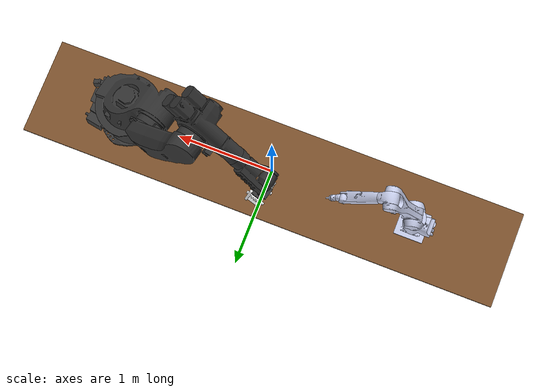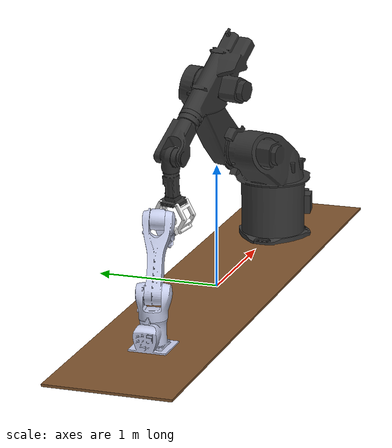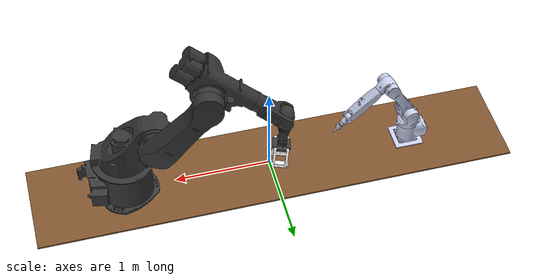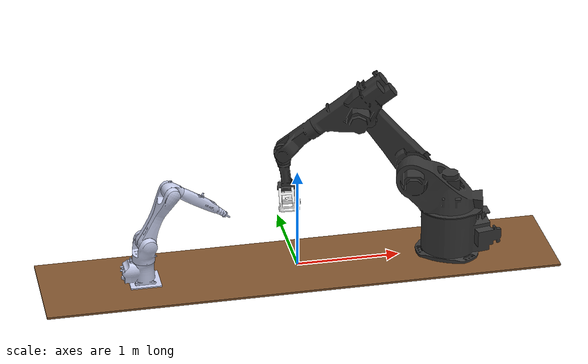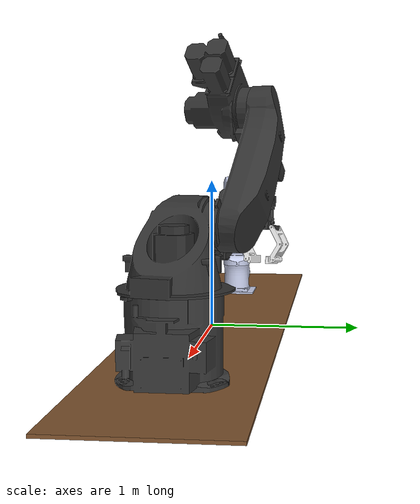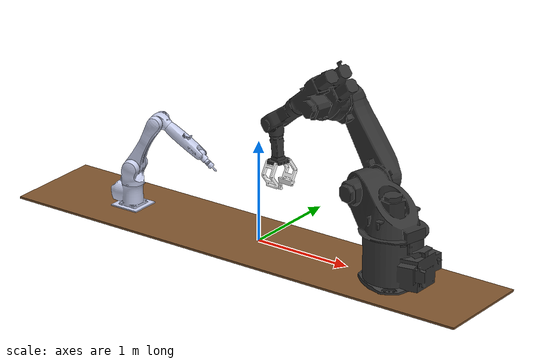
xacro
<?xml version="1.0"?>
<robot name="kr160" xmlns:xacro="http://ros.org/wiki/xacro">

  <xacro:include filename="$(find kr160)/urdf/kr10.xacro"/>
  <xacro:include filename="$(find kr160)/urdf/kr60.xacro"/>

    <!-- Defining the colors used in this robot -->
    <material name="Black">
        <color rgba="0 0 0 1"/>
    </material>

    <material name="White">
        <color rgba="1 1 1 1"/>
    </material>

    <material name="Blue">
        <color rgba="0 0 1 1"/>
    </material>

    <material name="Red">
        <color rgba="1 0 0 1"/>
    </material>

    <!-- Inertial matrix -->
    <xacro:macro name="inertial_matrix" params="mass">
        <inertial>
            <mass value="${mass}" />
            <inertia ixx="1.0" ixy="0.0" ixz="0.0" iyy="0.5" iyz="0.0" izz="1.0" />
        </inertial>
    </xacro:macro>

  <!-- ///////////////////////////////////////   dummy link   ////////////////////////////////////////// -->

  <link name="dummy">
      <visual>
            <origin xyz=" 0 0 -0.02"  rpy="0 0 0"/>
                <geometry>
                      <box size="5 1 0.02" />
                </geometry>
            <material name="Brown" />
      </visual>
      <collision>
          <origin xyz=" 0 0 -0.02"  rpy="0 0 0"/>
          <geometry>
              <box size="5 1 0.02" />
          </geometry>
      </collision>
      <xacro:inertial_matrix mass="500"/>
  </link>

  <!-- /////////////////////////////////   kr10   ////////////////////////////////////// -->
  <xacro:kr10 prefix="kr10"/>
  <joint name="dummy_joint_kr10" type="fixed">
    <origin xyz="-1.5 0 0" rpy="0 0 0" />
    <parent link="dummy"/>
    <child link="kr10_base_link"/>
  </joint>

  <!-- /////////////////////////////////   kr60   ////////////////////////////////////// -->
  <xacro:kr60 prefix="kr60"/>
  <joint name="dummy_joint_kr60" type="fixed">
    <origin xyz="1.5 0 0" rpy="0 0 3.14" />
    <parent link="dummy"/>
    <child link="kr60_base_link"/>
  </joint>

  <!-- /////////////////////////////////   Gazebo   ////////////////////////////////////// -->
    <!-- Transmissions for ROS Control -->
    <xacro:macro name="transmission_block" params="joint_name">
        <transmission name="tran1">
            <type>transmission_interface/SimpleTransmission</type>
            <joint name="${joint_name}">
                <hardwareInterface>hardware_interface/PositionJointInterface</hardwareInterface>
            </joint>
            <actuator name="motor1">
                <hardwareInterface>hardware_interface/PositionJointInterface</hardwareInterface>
                <mechanicalReduction>1</mechanicalReduction>
            </actuator>
        </transmission>
    </xacro:macro>

    <xacro:transmission_block joint_name="kr10_joint1"/>
    <xacro:transmission_block joint_name="kr10_joint2"/>
    <xacro:transmission_block joint_name="kr10_joint3"/>
    <xacro:transmission_block joint_name="kr10_joint4"/>
    <xacro:transmission_block joint_name="kr10_joint5"/>
    <xacro:transmission_block joint_name="kr10_joint6"/>

    <xacro:transmission_block joint_name="kr60_joint1"/>
    <xacro:transmission_block joint_name="kr60_joint2"/>
    <xacro:transmission_block joint_name="kr60_joint3"/>
    <xacro:transmission_block joint_name="kr60_joint4"/>
    <xacro:transmission_block joint_name="kr60_joint5"/>
    <xacro:transmission_block joint_name="kr60_joint6"/>
    <xacro:transmission_block joint_name="kr60_finger_joint1"/>
    <xacro:transmission_block joint_name="kr60_finger_joint2"/>

    <!-- ros_control plugin -->
    <gazebo>
        <plugin name="gazebo_ros_control" filename="libgazebo_ros_control.so">
            <robotNamespace>/kr160</robotNamespace>
            <robotSimType>gazebo_ros_control/DefaultRobotHWSim</robotSimType>
            <legacyModeNS>true</legacyModeNS>
        </plugin>
    </gazebo>

    <!-- default joint position -->
    <!-- kr10: -0.17 0.28 -0.55 0.00 -1.35 -0.01 -->
    <!-- kr60: -0.21 0.38 0.01 0.09 -2.35 0.00 0.00 0.00 -->

    <!-- cylinders -->
    <!-- cylinder0: 0.1 0.05-->
    <!-- cylinder1: 0.15 0.3 -->

</robot>

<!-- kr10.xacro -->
<robot name="kr10" xmlns:xacro="http://ros.org/wiki/xacro">
<xacro:macro name="kr10" params="prefix:=kr10">

  <link
    name="${prefix}_base_link">
    <inertial>
      <origin
        xyz="-0.0389079126292309 -4.2959014174726E-05 0.095499912626456"
        rpy="0 0 0" />
      <mass
        value="12.0127122518777" />
      <inertia
        ixx="0.096372089081788"
        ixy="-0.000105055998553245"
        ixz="0.0056899080162169"
        iyy="0.13962559834333"
        iyz="-8.4214207924127E-06"
        izz="0.121027155275122" />
    </inertial>
    <visual>
      <origin
        xyz="0 0 0"
        rpy="0 0 0" />
      <geometry>
        <mesh
          filename="package://kr10/meshes/base_link.STL" />
      </geometry>
      <material
        name="">
        <color
          rgba="0.792156862745098 0.819607843137255 0.933333333333333 1" />
      </material>
    </visual>
    <collision>
      <origin
        xyz="0 0 0"
        rpy="0 0 0" />
      <geometry>
        <mesh
          filename="package://kr10/meshes/base_link.STL" />
      </geometry>
    </collision>
  </link>
  <link
    name="${prefix}_link1">
    <inertial>
      <origin
        xyz="0.00741380480149578 0.00354552947139167 0.115715412511507"
        rpy="0 0 0" />
      <mass
        value="6.2751497959128" />
      <inertia
        ixx="0.0751893674671946"
        ixy="0.00504886489144856"
        ixz="-0.00509592816750828"
        iyy="0.0510924965053144"
        iyz="-0.001549309062334"
        izz="0.0562677349522946" />
    </inertial>
    <visual>
      <origin
        xyz="0 0 0"
        rpy="0 0 0" />
      <geometry>
        <mesh
          filename="package://kr10/meshes/link1.STL" />
      </geometry>
      <material
        name="">
        <color
          rgba="0.792156862745098 0.819607843137255 0.933333333333333 1" />
      </material>
    </visual>
    <collision>
      <origin
        xyz="0 0 0"
        rpy="0 0 0" />
      <geometry>
        <mesh
          filename="package://kr10/meshes/link1.STL" />
      </geometry>
    </collision>
  </link>
  <joint
    name="${prefix}_joint1"
    type="revolute">
    <origin
      xyz="0 0 0.217"
      rpy="0 0 0" />
    <parent
      link="${prefix}_base_link" />
    <child
      link="${prefix}_link1" />
    <axis
      xyz="0 0 1" />
    <limit
      lower="-3"
      upper="3"
          effort="300"
          velocity="1" />
        <dynamics damping="10.0" friction="0.0"/>
  </joint>
  <link
    name="${prefix}_link2">
    <inertial>
      <origin
        xyz="0.112673325433516 -0.235533330268791 5.25939883689319E-05"
        rpy="0 0 0" />
      <mass
        value="10.0623910575082" />
      <inertia
        ixx="0.373446746946084"
        ixy="0.169218239470221"
        ixz="-0.000352160811815804"
        iyy="0.131793291732547"
        iyz="0.000952442844566425"
        izz="0.442938494752101" />
    </inertial>
    <visual>
      <origin
        xyz="0 0 0"
        rpy="0 0 0" />
      <geometry>
        <mesh
          filename="package://kr10/meshes/link2.STL" />
      </geometry>
      <material
        name="">
        <color
          rgba="0.792156862745098 0.819607843137255 0.933333333333333 1" />
      </material>
    </visual>
    <collision>
      <origin
        xyz="0 0 0"
        rpy="0 0 0" />
      <geometry>
        <mesh
          filename="package://kr10/meshes/link2.STL" />
      </geometry>
    </collision>
  </link>
  <joint
    name="${prefix}_joint2"
    type="revolute">
    <origin
      xyz="0.025397 0.00050592 0.183"
      rpy="-1.5708 0 0.19801" />
    <parent
      link="${prefix}_link1" />
    <child
      link="${prefix}_link2" />
    <axis
      xyz="0 0 -1" />
    <limit
      lower="-1.4"
      upper="2.1"
      effort="300"
      velocity="1" />
    <dynamics damping="10" friction="0.0"/>
  </joint>
  <link
    name="${prefix}_link3">
    <inertial>
      <origin
        xyz="0.000529908025397541 0.0191760796551027 -2.4642212648307E-05"
        rpy="0 0 0" />
      <mass
        value="2.87413726622842" />
      <inertia
        ixx="0.0106153706452702"
        ixy="-0.000284572592443065"
        ixz="-3.571396350265E-06"
        iyy="0.00740315810462365"
        iyz="1.82140206105029E-06"
        izz="0.0111376816178918" />
    </inertial>
    <visual>
      <origin
        xyz="0 0 0"
        rpy="0 0 0" />
      <geometry>
        <mesh
          filename="package://kr10/meshes/link3.STL" />
      </geometry>
      <material
        name="">
        <color
          rgba="0.792156862745098 0.819607843137255 0.933333333333333 1" />
      </material>
    </visual>
    <collision>
      <origin
        xyz="0 0 0"
        rpy="0 0 0" />
      <geometry>
        <mesh
          filename="package://kr10/meshes/link3.STL" />
      </geometry>
    </collision>
  </link>
  <joint
    name="${prefix}_joint3"
    type="revolute">
    <origin
      xyz="0.25768 -0.49719 0.0035"
      rpy="-3.1416 0 1.5708" />
    <parent
      link="${prefix}_link2" />
    <child
      link="${prefix}_link3" />
    <axis
      xyz="0 0 -1" />
    <limit
      lower="-4"
      upper="1"
      effort="300"
      velocity="1" />
    <dynamics damping="10" friction="0.0"/>
  </joint>
  <link
    name="${prefix}_link4">
    <inertial>
      <origin
        xyz="0.000495827295870943 0.000331263303056328 0.185104333291848"
        rpy="0 0 0" />
      <mass
        value="4.03623874477417" />
      <inertia
        ixx="0.0514724229213813"
        ixy="-0.000345898984168441"
        ixz="-7.55534798658624E-05"
        iyy="0.0508207618372116"
        iyz="-0.000225438428481011"
        izz="0.00734338590437416" />
    </inertial>
    <visual>
      <origin
        xyz="0 0 0"
        rpy="0 0 0" />
      <geometry>
        <mesh
          filename="package://kr10/meshes/link4.STL" />
      </geometry>
      <material
        name="">
        <color
          rgba="0.792156862745098 0.819607843137255 0.933333333333333 1" />
      </material>
    </visual>
    <collision>
      <origin
        xyz="0 0 0"
        rpy="0 0 0" />
      <geometry>
        <mesh
          filename="package://kr10/meshes/link4.STL" />
      </geometry>
    </collision>
  </link>
  <joint
    name="${prefix}_joint4"
    type="continuous">
    <origin
      xyz="0.037811 0.11612 0"
      rpy="1.5708 -0.33893 2.5361" />
    <parent
      link="${prefix}_link3" />
    <child
      link="${prefix}_link4" />
    <axis
      xyz="0 0 -1" />
    <dynamics damping="5" friction="0.0"/>
  </joint>
  <link
    name="${prefix}_link5">
    <inertial>
      <origin
        xyz="0.0120557743377237 0.0101959936253579 0.0021636985615841"
        rpy="0 0 0" />
      <mass
        value="0.4420683299725" />
      <inertia
        ixx="0.000419965604922443"
        ixy="-0.000120215358737915"
        ixz="1.29271922535509E-05"
        iyy="0.00046073941946462"
        iyz="1.04681508421518E-05"
        izz="0.000528480867675673" />
    </inertial>
    <visual>
      <origin
        xyz="0 0 0"
        rpy="0 0 0" />
      <geometry>
        <mesh
          filename="package://kr10/meshes/link5.STL" />
      </geometry>
      <material
        name="">
        <color
          rgba="0.792156862745098 0.819607843137255 0.933333333333333 1" />
      </material>
    </visual>
    <collision>
      <origin
        xyz="0 0 0"
        rpy="0 0 0" />
      <geometry>
        <mesh
          filename="package://kr10/meshes/link5.STL" />
      </geometry>
    </collision>
  </link>
  <joint
    name="${prefix}_joint5"
    type="revolute">
    <origin
      xyz="9.6051E-05 0.00023081 0.398"
      rpy="1.5708 -0.97526 -0.39435" />
    <parent
      link="${prefix}_link4" />
    <child
      link="${prefix}_link5" />
    <axis
      xyz="0 0 -1" />
    <limit
      lower="-1.8"
      upper="2.1"
      effort="300"
      velocity="1" />
    <dynamics damping="1" friction="0.0"/>
  </joint>
  <link
    name="${prefix}_link6">
    <inertial>
      <origin
        xyz="-2.27839703337285E-06 -1.67395761618838E-06 0.0553153630699634"
        rpy="0 0 0" />
      <mass
        value="0.213549096503453" />
      <inertia
        ixx="0.000219860024372743"
        ixy="-4.50770251278094E-09"
        ixz="-2.33140665193661E-08"
        iyy="0.000219862847887346"
        iyz="-1.71290426984171E-08"
        izz="7.43113458858691E-05" />
    </inertial>
    <visual>
      <origin
        xyz="0 0 0"
        rpy="0 0 0" />
      <geometry>
        <mesh
          filename="package://kr10/meshes/link6.STL" />
      </geometry>
      <material
        name="">
        <color
          rgba="0.792156862745098 0.819607843137255 0.933333333333333 1" />
      </material>
    </visual>
    <collision>
      <origin
        xyz="0 0 0"
        rpy="0 0 0" />
      <geometry>
        <mesh
          filename="package://kr10/meshes/link6.STL" />
      </geometry>
    </collision>
  </link>
  <joint
    name="${prefix}_joint6"
    type="continuous">
    <origin
      xyz="0.050858 0.042845 0.00025"
      rpy="-1.5708 0.34761 -0.87071" />
    <parent
      link="${prefix}_link5" />
    <child
      link="${prefix}_link6" />
    <axis
      xyz="0 0 1" />
    <dynamics damping="1" friction="0.0"/>
  </joint>

  </xacro:macro>
</robot>

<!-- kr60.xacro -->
<robot name="kr60" xmlns:xacro="http://ros.org/wiki/xacro">
  <xacro:macro name="kr60" params="prefix:=kr60">

  <link
    name="${prefix}_base_link">
    <inertial>
      <origin
        xyz="-0.0435912921701559 0.000713255348429254 0.235869111604986"
        rpy="0 0 0" />
      <mass
        value="131.03709830541" />
      <inertia
        ixx="4.89785584702139"
        ixy="0.0374706691148856"
        ixz="-0.212225957715894"
        iyy="6.14888362749998"
        iyz="-0.000661186598210806"
        izz="6.05287659150192" />
    </inertial>
    <visual>
      <origin
        xyz="0 0 0"
        rpy="0 0 0" />
      <geometry>
        <mesh
          filename="package://kr60/meshes/base_link.STL" />
      </geometry>
      <material
        name="">
        <color
          rgba="0.223529411764706 0.223529411764706 0.223529411764706 1" />
      </material>
    </visual>
    <collision>
      <origin
        xyz="0 0 0"
        rpy="0 0 0" />
      <geometry>
        <mesh
          filename="package://kr60/meshes/base_link.STL" />
      </geometry>
    </collision>
  </link>

  <link
    name="${prefix}_link1">
    <inertial>
      <origin
        xyz="0.140797971765356 -0.0164096960535733 0.187359043807774"
        rpy="0 0 0" />
      <mass
        value="82.8920172367664" />
      <inertia
        ixx="2.45467046863107"
        ixy="0.256865903550409"
        ixz="-1.16906897181984"
        iyy="4.32241124955131"
        iyz="0.176354317999072"
        izz="4.14782926078883" />
    </inertial>
    <visual>
      <origin
        xyz="0 0 0"
        rpy="0 0 0" />
      <geometry>
        <mesh
          filename="package://kr60/meshes/link1.STL" />
      </geometry>
      <material
        name="">
        <color
          rgba="0.2 0.2 0.2 1" />
      </material>
    </visual>
    <collision>
      <origin
        xyz="0 0 0"
        rpy="0 0 0" />
      <geometry>
        <mesh
          filename="package://kr60/meshes/link1.STL" />
      </geometry>
    </collision>
  </link>
  <joint
    name="${prefix}_joint1"
    type="revolute">
    <origin
      xyz="0.00035187 -4.2629E-05 0.49797"
      rpy="0 0 0" />
    <parent
      link="${prefix}_base_link" />
    <child
      link="${prefix}_link1" />
    <axis
      xyz="0 0 -1" />
    <limit
      lower="-3.14"
      upper="3.14"
      effort="0"
      velocity="0" />
  </joint>

  <link
    name="${prefix}_link2">
    <inertial>
      <origin
        xyz="0.251956440024243 0.31201537254992 0.101340677761361"
        rpy="0 0 0" />
      <mass
        value="54.5098631728848" />
      <inertia
        ixx="3.37106903827733"
        ixy="-2.31897616562626"
        ixz="-0.0123248243600918"
        iyy="2.37820274493385"
        iyz="-0.0168099695812892"
        izz="5.37880440302274" />
    </inertial>
    <visual>
      <origin
        xyz="0 0 0"
        rpy="0 0 0" />
      <geometry>
        <mesh
          filename="package://kr60/meshes/link2.STL" />
      </geometry>
      <material
        name="">
        <color
          rgba="0.2 0.2 0.2 1" />
      </material>
    </visual>
    <collision>
      <origin
        xyz="0 0 0"
        rpy="0 0 0" />
      <geometry>
        <mesh
          filename="package://kr60/meshes/link2.STL" />
      </geometry>
    </collision>
  </link>
  <joint
    name="${prefix}_joint2"
    type="revolute">
    <origin
      xyz="0.30771 -0.22264 0.31103"
      rpy="1.5708 0 -0.22752" />
    <parent
      link="${prefix}_link1" />
    <child
      link="${prefix}_link2" />
    <axis
      xyz="0 0 -1" />
    <limit
      lower="-1.2"
      upper="1.4"
      effort="0"
      velocity="0" />
  </joint>

  <link
    name="${prefix}_link3">
    <inertial>
      <origin
        xyz="0.0264574349222555 0.0622817405350231 -0.184769381740328"
        rpy="0 0 0" />
      <mass
        value="52.8139839675299" />
      <inertia
        ixx="1.44583618573615"
        ixy="0.675569358504738"
        ixz="-0.08105662717627"
        iyy="1.74771111138366"
        iyz="0.138955152142587"
        izz="2.35512831766369" />
    </inertial>
    <visual>
      <origin
        xyz="0 0 0"
        rpy="0 0 0" />
      <geometry>
        <mesh
          filename="package://kr60/meshes/link3.STL" />
      </geometry>
      <material
        name="">
        <color
          rgba="0.2 0.2 0.2 1" />
      </material>
    </visual>
    <collision>
      <origin
        xyz="0 0 0"
        rpy="0 0 0" />
      <geometry>
        <mesh
          filename="package://kr60/meshes/link3.STL" />
      </geometry>
    </collision>
  </link>
  <joint
    name="${prefix}_joint3"
    type="revolute">
    <origin
      xyz="0.53484 0.66064 0.017"
      rpy="0 0 0" />
    <parent
      link="${prefix}_link2" />
    <child
      link="${prefix}_link3" />
    <axis
      xyz="0 0 -1" />
    <limit
      lower="-4"
      upper="1.1"
      effort="0"
      velocity="0" />
  </joint>

  <link
    name="${prefix}_link4">
    <inertial>
      <origin
        xyz="-0.00407295592284429 0.0114233456063895 0.191771095925468"
        rpy="0 0 0" />
      <mass
        value="9.33484403440081" />
      <inertia
        ixx="0.173337740682456"
        ixy="0.00766249996810709"
        ixz="0.00211297471780549"
        iyy="0.155598279375636"
        iyz="-0.00570657719860746"
        izz="0.0550237588439791" />
    </inertial>
    <visual>
      <origin
        xyz="0 0 0"
        rpy="0 0 0" />
      <geometry>
        <mesh
          filename="package://kr60/meshes/link4.STL" />
      </geometry>
      <material
        name="">
        <color
          rgba="0.2 0.2 0.2 1" />
      </material>
    </visual>
    <collision>
      <origin
        xyz="0 0 0"
        rpy="0 0 0" />
      <geometry>
        <mesh
          filename="package://kr60/meshes/link4.STL" />
      </geometry>
    </collision>
  </link>
  <joint
    name="${prefix}_joint4"
    type="revolute">
    <origin
      xyz="0.40937 -0.14672 -0.16457"
      rpy="1.5708 0.35122 0.88684" />
    <parent
      link="${prefix}_link3" />
    <child
      link="${prefix}_link4" />
    <axis
      xyz="0 0 -1" />
    <limit
      lower="-3.14"
      upper="3.14"
      effort="0"
      velocity="0" />
  </joint>

  <link
    name="${prefix}_link5">
    <inertial>
      <origin
        xyz="-0.00305829815751446 -0.0262624932024078 -0.0855135194075107"
        rpy="0 0 0" />
      <mass
        value="3.88136296388639" />
      <inertia
        ixx="0.018435030823998"
        ixy="-0.000643999611295686"
        ixz="0.000225940311804447"
        iyy="0.0129804584036509"
        iyz="0.00194018831589403"
        izz="0.0166999744136098" />
    </inertial>
    <visual>
      <origin
        xyz="0 0 0"
        rpy="0 0 0" />
      <geometry>
        <mesh
          filename="package://kr60/meshes/link5.STL" />
      </geometry>
      <material
        name="">
        <color
          rgba="0.2 0.2 0.2 1" />
      </material>
    </visual>
    <collision>
      <origin
        xyz="0 0 0"
        rpy="0 0 0" />
      <geometry>
        <mesh
          filename="package://kr60/meshes/link5.STL" />
      </geometry>
    </collision>
  </link>
  <joint
    name="${prefix}_joint5"
    type="revolute">
    <origin
      xyz="-0.023643 0.06437 0.41596"
      rpy="-1.5708 -0.88729 0.35371" />
    <parent
      link="${prefix}_link4" />
    <child
      link="${prefix}_link5" />
    <axis
      xyz="0 0 -1" />
    <limit
      lower="-3.2"
      upper="1.52"
      effort="0"
      velocity="0" />
  </joint>

  <link
    name="${prefix}_link6">
    <inertial>
      <origin
        xyz="-0.000266811986394 0.0022051066231592 0.159155225523868"
        rpy="0 0 0" />
      <mass
        value="2.49283147388058" />
      <inertia
        ixx="0.0228945331943247"
        ixy="6.35070513466885E-05"
        ixz="-3.49749616928972E-05"
        iyy="0.0225138449320645"
        iyz="0.000268449006240413"
        izz="0.0064716945834193" />
    </inertial>
    <visual>
      <origin
        xyz="0 0 0"
        rpy="0 0 0" />
      <geometry>
        <mesh
          filename="package://kr60/meshes/link6.STL" />
      </geometry>
      <material
        name="">
        <color
          rgba="0.223529411764706 0.223529411764706 0.223529411764706 1" />
      </material>
    </visual>
    <collision>
      <origin
        xyz="0 0 0"
        rpy="0 0 0" />
      <geometry>
        <mesh
          filename="package://kr60/meshes/link6.STL" />
      </geometry>
    </collision>
  </link>
  <joint
    name="${prefix}_joint6"
    type="revolute">
    <origin
      xyz="-0.014573 -0.12469 -0.068374"
      rpy="1.5708 0.23058 -0.11592" />
    <parent
      link="${prefix}_link5" />
    <child
      link="${prefix}_link6" />
    <axis
      xyz="0 0 -1" />
    <limit
      lower="-3.14"
      upper="3.14"
      effort="0"
      velocity="0" />
  </joint>
  <!-- //////////////////////////////////////   finger   ////////////////////////////////////////////// -->

  <link
    name="${prefix}_finger_link1">
    <inertial>
      <origin
        xyz="-0.0749733532255245 0.130628735923085 -0.074999999999946"
        rpy="0 0 0" />
      <mass
        value="0.893519309367383" />
      <inertia
        ixx="0.0073937480635528"
        ixy="0.00124957233576088"
        ixz="3.13158244995282E-16"
        iyy="0.00326091528208565"
        iyz="-4.25684877972121E-16"
        izz="0.00565771627211372" />
    </inertial>
    <visual>
      <origin
        xyz="0 0 0"
        rpy="0 0 0" />
      <geometry>
        <mesh
          filename="package://kr60/meshes/finger_link1.STL" />
      </geometry>
      <material
        name="">
        <color
          rgba="1 1 1 1" />
      </material>
    </visual>
    <collision>
      <origin
        xyz="0 0 0"
        rpy="0 0 0" />
      <geometry>
        <mesh
          filename="package://kr60/meshes/finger_link1.STL" />
      </geometry>
    </collision>
  </link>
  <joint
    name="${prefix}_finger_joint1"
    type="revolute">
    <origin
      xyz="-0.093833 0.056587 0.2565"
      rpy="1.5708 0.39611 -1.2963" />
    <parent
      link="${prefix}_link6" />
    <child
      link="${prefix}_finger_link1" />
    <axis
      xyz="0 0 -1" />
    <limit
      lower="-1"
      upper="0.2"
      effort="0"
      velocity="0" />
  </joint>

  <link
    name="${prefix}_finger_link2">
    <inertial>
      <origin
        xyz="-0.0434409829659067 0.144196411218408 -0.0750000000000308"
        rpy="0 0 0" />
      <mass
        value="0.893519309367395" />
      <inertia
        ixx="0.00645658292905761"
        ixy="0.00213264017844388"
        ixz="-9.93129189996722E-17"
        iyy="0.00419586853440302"
        iyz="5.19170210294684E-16"
        izz="0.00565550438993584" />
    </inertial>
    <visual>
      <origin
        xyz="0 0 0"
        rpy="0 0 0" />
      <geometry>
        <mesh
          filename="package://kr60/meshes/finger_link2.STL" />
      </geometry>
      <material
        name="">
        <color
          rgba="1 1 1 1" />
      </material>
    </visual>
    <collision>
      <origin
        xyz="0 0 0"
        rpy="0 0 0" />
      <geometry>
        <mesh
          filename="package://kr60/meshes/finger_link2.STL" />
      </geometry>
    </collision>
  </link>
  <joint
    name="${prefix}_finger_joint2"
    type="revolute">
    <origin
      xyz="-0.050462 -0.097423 0.2565"
      rpy="1.5708 0.39611 -1.2963" />
    <parent
      link="${prefix}_link6" />
    <child
      link="${prefix}_finger_link2" />
    <axis
      xyz="0 0 1" />
    <limit
      lower="-1"
      upper="0.2"
      effort="0"
      velocity="0" />
  </joint>

    <!-- Grasping frame -->
    <link name="${prefix}_finger_frame"/>
    <joint name="${prefix}_finger_frame_joint" type="fixed">
      <parent link="${prefix}_link6"/>
      <child link="${prefix}_finger_frame"/>
      <origin xyz="0.08 0 0" rpy="0 0 0"/>
    </joint>

  </xacro:macro>
</robot>
